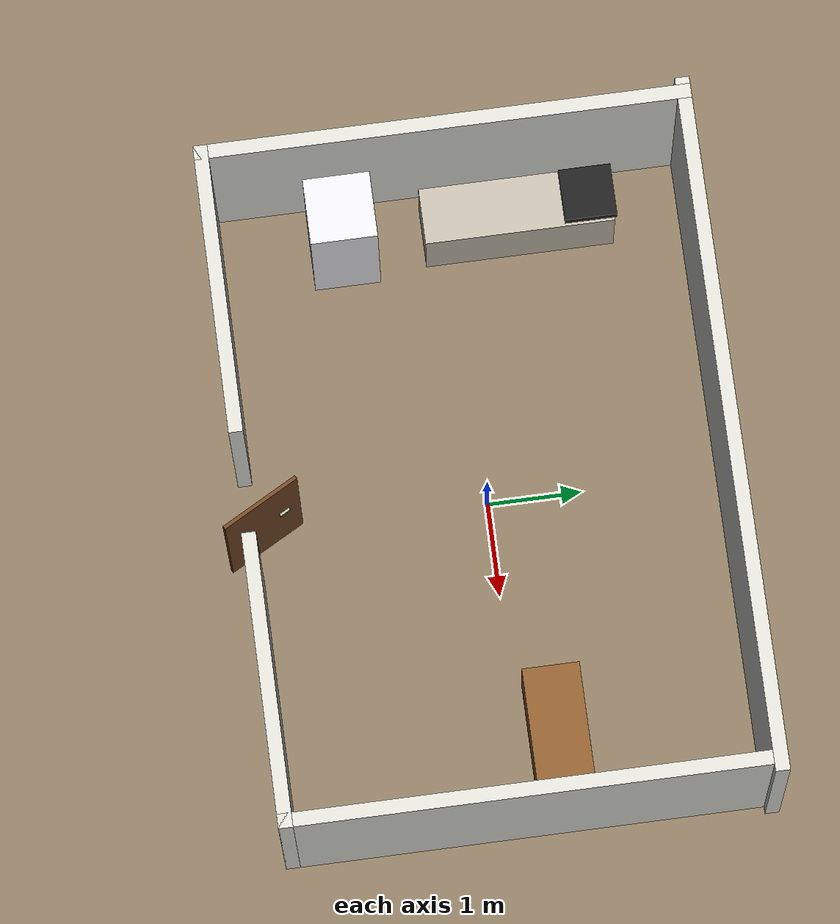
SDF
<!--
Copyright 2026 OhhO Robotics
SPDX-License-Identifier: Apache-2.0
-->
<?xml version="1.0" ?>
<sdf version="1.8">
  <world name="apartment">

    <physics name="phys" type="ignored">
      <max_step_size>0.002</max_step_size>
      <real_time_factor>1.0</real_time_factor>
      <real_time_update_rate>500</real_time_update_rate>
    </physics>

    <plugin filename="gz-sim-physics-system" name="gz::sim::systems::Physics"/>
    <plugin filename="gz-sim-user-commands-system" name="gz::sim::systems::UserCommands"/>
    <plugin filename="gz-sim-scene-broadcaster-system" name="gz::sim::systems::SceneBroadcaster"/>
    <plugin filename="gz-sim-sensors-system" name="gz::sim::systems::Sensors">
      <render_engine>ogre2</render_engine>
    </plugin>
    <plugin filename="gz-sim-imu-system" name="gz::sim::systems::Imu"/>

    <light type="directional" name="sun">
      <cast_shadows>false</cast_shadows>
      <pose>0 0 10 0 0 0</pose>
      <diffuse>0.9 0.88 0.8 1</diffuse>
      <specular>0.15 0.15 0.15 1</specular>
      <direction>-0.4 0.1 -0.9</direction>
    </light>

    <model name="ground_plane">
      <static>true</static>
      <link name="link">
        <collision name="collision">
          <geometry>
            <plane>
              <normal>0 0 1</normal>
              <size>40 40</size>
            </plane>
          </geometry>
        </collision>
        <visual name="visual">
          <geometry>
            <plane>
              <normal>0 0 1</normal>
              <size>40 40</size>
            </plane>
          </geometry>
          <material>
            <ambient>0.55 0.48 0.38 1</ambient>
            <diffuse>0.55 0.48 0.38 1</diffuse>
          </material>
        </visual>
      </link>
    </model>

    <!-- Room is 7 m (X) by 5 m (Y), walls 2.4 m tall. Door gap on the south wall. -->
    <model name="wall_north">
      <static>true</static>
      <pose>0 2.5 1.2 0 0 0</pose>
      <link name="link">
        <collision name="collision">
          <geometry><box><size>7.3 0.15 2.4</size></box></geometry>
        </collision>
        <visual name="visual">
          <geometry><box><size>7.3 0.15 2.4</size></box></geometry>
          <material>
            <ambient>0.85 0.85 0.82 1</ambient>
            <diffuse>0.85 0.85 0.82 1</diffuse>
          </material>
        </visual>
      </link>
    </model>

    <model name="wall_south_west">
      <static>true</static>
      <pose>-2.05 -2.5 1.2 0 0 0</pose>
      <link name="link">
        <collision name="collision">
          <geometry><box><size>3.05 0.15 2.4</size></box></geometry>
        </collision>
        <visual name="visual">
          <geometry><box><size>3.05 0.15 2.4</size></box></geometry>
          <material>
            <ambient>0.85 0.85 0.82 1</ambient>
            <diffuse>0.85 0.85 0.82 1</diffuse>
          </material>
        </visual>
      </link>
    </model>

    <model name="wall_south_east">
      <static>true</static>
      <pose>2.05 -2.5 1.2 0 0 0</pose>
      <link name="link">
        <collision name="collision">
          <geometry><box><size>3.05 0.15 2.4</size></box></geometry>
        </collision>
        <visual name="visual">
          <geometry><box><size>3.05 0.15 2.4</size></box></geometry>
          <material>
            <ambient>0.85 0.85 0.82 1</ambient>
            <diffuse>0.85 0.85 0.82 1</diffuse>
          </material>
        </visual>
      </link>
    </model>

    <model name="wall_east">
      <static>true</static>
      <pose>3.5 0 1.2 0 0 0</pose>
      <link name="link">
        <collision name="collision">
          <geometry><box><size>0.15 5.15 2.4</size></box></geometry>
        </collision>
        <visual name="visual">
          <geometry><box><size>0.15 5.15 2.4</size></box></geometry>
          <material>
            <ambient>0.85 0.85 0.82 1</ambient>
            <diffuse>0.85 0.85 0.82 1</diffuse>
          </material>
        </visual>
      </link>
    </model>

    <model name="wall_west">
      <static>true</static>
      <pose>-3.5 0 1.2 0 0 0</pose>
      <link name="link">
        <collision name="collision">
          <geometry><box><size>0.15 5.15 2.4</size></box></geometry>
        </collision>
        <visual name="visual">
          <geometry><box><size>0.15 5.15 2.4</size></box></geometry>
          <material>
            <ambient>0.85 0.85 0.82 1</ambient>
            <diffuse>0.85 0.85 0.82 1</diffuse>
          </material>
        </visual>
      </link>
    </model>

    <!-- Door leaf, ajar in the south-wall opening. -->
    <model name="door">
      <static>true</static>
      <pose>0.15 -2.35 1.02 0 0 0.5</pose>
      <link name="leaf">
        <collision name="collision">
          <geometry><box><size>0.04 0.9 2.04</size></box></geometry>
        </collision>
        <visual name="leaf">
          <geometry><box><size>0.04 0.9 2.04</size></box></geometry>
          <material>
            <ambient>0.45 0.28 0.14 1</ambient>
            <diffuse>0.45 0.28 0.14 1</diffuse>
          </material>
        </visual>
        <visual name="handle">
          <pose>0.03 0.25 0.05 0 0 0</pose>
          <geometry><box><size>0.03 0.12 0.04</size></box></geometry>
          <material>
            <ambient>0.75 0.75 0.7 1</ambient>
            <diffuse>0.75 0.75 0.7 1</diffuse>
          </material>
        </visual>
      </link>
    </model>

    <!-- Kitchen along the west wall: counter, stove, fridge. -->
    <model name="kitchen_counter">
      <static>true</static>
      <pose>-2.95 0.7 0.45 0 0 0</pose>
      <link name="link">
        <collision name="collision">
          <geometry><box><size>0.6 2.0 0.9</size></box></geometry>
        </collision>
        <visual name="visual">
          <geometry><box><size>0.6 2.0 0.9</size></box></geometry>
          <material>
            <ambient>0.75 0.72 0.66 1</ambient>
            <diffuse>0.75 0.72 0.66 1</diffuse>
          </material>
        </visual>
      </link>
    </model>

    <model name="stove">
      <static>true</static>
      <pose>-2.95 1.45 0.98 0 0 0</pose>
      <link name="link">
        <collision name="collision">
          <geometry><box><size>0.55 0.55 0.12</size></box></geometry>
        </collision>
        <visual name="visual">
          <geometry><box><size>0.55 0.55 0.12</size></box></geometry>
          <material>
            <ambient>0.12 0.12 0.12 1</ambient>
            <diffuse>0.12 0.12 0.12 1</diffuse>
          </material>
        </visual>
      </link>
    </model>

    <model name="fridge">
      <static>true</static>
      <pose>-2.9 -1.15 0.9 0 0 0</pose>
      <link name="link">
        <collision name="collision">
          <geometry><box><size>0.7 0.7 1.8</size></box></geometry>
        </collision>
        <visual name="visual">
          <geometry><box><size>0.7 0.7 1.8</size></box></geometry>
          <material>
            <ambient>0.9 0.9 0.92 1</ambient>
            <diffuse>0.9 0.9 0.92 1</diffuse>
          </material>
        </visual>
      </link>
    </model>

    <!-- Desk on the east side of the room. -->
    <model name="desk">
      <static>true</static>
      <pose>2.55 0.4 0.38 0 0 0</pose>
      <link name="link">
        <collision name="collision">
          <geometry><box><size>1.2 0.6 0.76</size></box></geometry>
        </collision>
        <visual name="visual">
          <geometry><box><size>1.2 0.6 0.76</size></box></geometry>
          <material>
            <ambient>0.55 0.36 0.18 1</ambient>
            <diffuse>0.55 0.36 0.18 1</diffuse>
          </material>
        </visual>
      </link>
    </model>

  </world>
</sdf>
